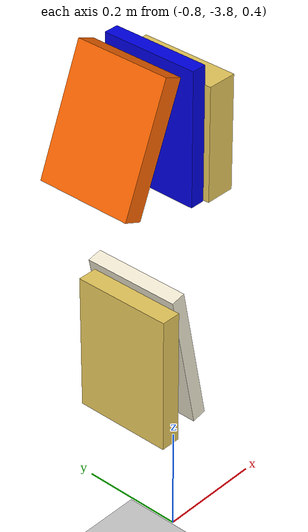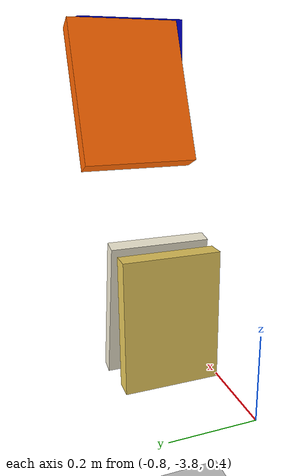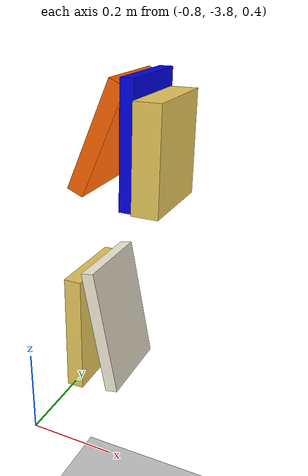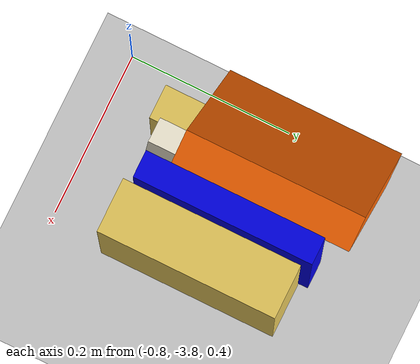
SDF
<sdf version="1.7">
 <world name="default">
  <model name="ground_plane">
   <static>1</static>
   <link name="link">
    <collision name="collision">
     <geometry><plane><normal>0 0 1</normal><size>100 100</size></plane></geometry>
     <surface>
      <contact><collide_bitmask>65535</collide_bitmask></contact>
      <friction><ode><mu>100</mu><mu2>50</mu2></ode></friction>
     </surface>
    </collision>
    <visual name="visual">
     <cast_shadows>0</cast_shadows>
     <geometry><plane><normal>0 0 1</normal><size>100 100</size></plane></geometry>
     <material>
      <script><uri>file://media/materials/scripts/gazebo.material</uri><name>Gazebo/Grey</name></script>
     </material>
    </visual>
   </link>
  </model>
  <model name="my_bookshelf">
   <link name="link_0_clone_0_clone_0">
    <inertial>
     <mass>1</mass>
     <inertia>
      <ixx>0.166667</ixx>
      <ixy>0</ixy>
      <ixz>0</ixz>
      <iyy>0.166667</iyy>
      <iyz>0</iyz>
      <izz>0.166667</izz>
     </inertia>
    </inertial>
    <pose>0.13743 -0.21618 0.64809 0 -0 0</pose>
    <gravity>0</gravity>
    <visual name="visual">
     <pose>0 0 0 -0.2 0 0</pose>
     <geometry><box><size>0.2 0.03 0.3</size></box></geometry>
     <material>
      <lighting>1</lighting>
      <script><uri>file://media/materials/scripts/gazebo.material</uri><name>Gazebo/Grey</name></script>
      <shader type="pixel"><normal_map>__default__</normal_map></shader>
      <ambient>0.96 0.93 0.84 1</ambient>
      <diffuse>0.96 0.93 0.84 1</diffuse>
      <specular>0.01 0.01 0.01 1</specular>
      <emissive>0 0 0 1</emissive>
     </material>
    </visual>
    <collision name="collision">
     <pose>0 0 0 -0.2 0 0</pose>
     <geometry><box><size>0.2 0.03 0.3</size></box></geometry>
     <surface>
      <friction>
       <ode><mu>1</mu><mu2>1</mu2><fdir1>0 0 0</fdir1><slip1>0</slip1><slip2>0</slip2></ode>
       <torsional>
        <coefficient>1</coefficient>
        <patch_radius>0</patch_radius>
        <surface_radius>0</surface_radius>
        <use_patch_radius>1</use_patch_radius>
        <ode><slip>0</slip></ode>
       </torsional>
      </friction>
      <bounce><restitution_coefficient>0</restitution_coefficient><threshold>1e+06</threshold></bounce>
      <contact>
       <collide_without_contact>0</collide_without_contact>
       <collide_without_contact_bitmask>1</collide_without_contact_bitmask>
       <collide_bitmask>1</collide_bitmask>
       <ode>
        <soft_cfm>0</soft_cfm>
        <soft_erp>0.2</soft_erp>
        <kp>1e+13</kp>
        <kd>1</kd>
        <max_vel>0.01</max_vel>
        <min_depth>0</min_depth>
       </ode>
       <bullet>
        <split_impulse>1</split_impulse>
        <split_impulse_penetration_threshold>-0.01</split_impulse_penetration_threshold>
        <soft_cfm>0</soft_cfm>
        <soft_erp>0.2</soft_erp>
        <kp>1e+13</kp>
        <kd>1</kd>
       </bullet>
      </contact>
     </surface>
    </collision>
   </link>
   <link name="link_0_clone_clone_0">
    <inertial>
     <mass>1</mass>
     <inertia>
      <ixx>0.166667</ixx>
      <ixy>0</ixy>
      <ixz>0</ixz>
      <iyy>0.166667</iyy>
      <iyz>0</iyz>
      <izz>0.166667</izz>
     </inertia>
    </inertial>
    <pose>0.125867 -0.155367 0.635683 0 -0 0</pose>
    <visual name="visual">
     <geometry><box><size>0.2 0.04 0.28</size></box></geometry>
     <material>
      <lighting>1</lighting>
      <script><uri>file://media/materials/scripts/gazebo.material</uri><name>Gazebo/Grey</name></script>
      <shader type="pixel"><normal_map>__default__</normal_map></shader>
      <ambient>0.91 0.79 0.36 1</ambient>
      <diffuse>0.91 0.79 0.36 1</diffuse>
      <specular>0.01 0.01 0.01 1</specular>
      <emissive>0 0 0 1</emissive>
     </material>
    </visual>
    <collision name="collision">
     <geometry><box><size>0.2 0.04 0.28</size></box></geometry>
     <surface>
      <friction>
       <ode><mu>1</mu><mu2>1</mu2><fdir1>0 0 0</fdir1><slip1>0</slip1><slip2>0</slip2></ode>
       <torsional>
        <coefficient>1</coefficient>
        <patch_radius>0</patch_radius>
        <surface_radius>0</surface_radius>
        <use_patch_radius>1</use_patch_radius>
        <ode><slip>0</slip></ode>
       </torsional>
      </friction>
      <bounce><restitution_coefficient>0</restitution_coefficient><threshold>1e+06</threshold></bounce>
      <contact>
       <collide_without_contact>0</collide_without_contact>
       <collide_without_contact_bitmask>1</collide_without_contact_bitmask>
       <collide_bitmask>1</collide_bitmask>
       <ode>
        <soft_cfm>0</soft_cfm>
        <soft_erp>0.2</soft_erp>
        <kp>1e+13</kp>
        <kd>1</kd>
        <max_vel>0.01</max_vel>
        <min_depth>0</min_depth>
       </ode>
       <bullet>
        <split_impulse>1</split_impulse>
        <split_impulse_penetration_threshold>-0.01</split_impulse_penetration_threshold>
        <soft_cfm>0</soft_cfm>
        <soft_erp>0.2</soft_erp>
        <kp>1e+13</kp>
        <kd>1</kd>
       </bullet>
      </contact>
     </surface>
    </collision>
   </link>
   <link name="link_0_clone_clone_1_clone_clone_clone_clone">
    <inertial>
     <mass>1</mass>
     <inertia>
      <ixx>0.166667</ixx>
      <ixy>0</ixy>
      <ixz>0</ixz>
      <iyy>0.166667</iyy>
      <iyz>0</iyz>
      <izz>0.166667</izz>
     </inertia>
    </inertial>
    <pose>0.191585 -0.180788 1.07689 0 -0 0</pose>
    <visual name="visual">
     <pose>0 0 0 0.4 -0 0</pose>
     <geometry><box><size>0.2 0.04 0.26</size></box></geometry>
     <material>
      <lighting>1</lighting>
      <script><uri>file://media/materials/scripts/gazebo.material</uri><name>Gazebo/Grey</name></script>
      <shader type="pixel"><normal_map>__default__</normal_map></shader>
      <ambient>1 0.4 0 1</ambient>
      <diffuse>0.8 0.8 0.8 1</diffuse>
      <specular>0.01 0.01 0.01 1</specular>
      <emissive>0 0 0 1</emissive>
     </material>
    </visual>
    <collision name="collision">
     <pose>0 0 0 0.4 -0 0</pose>
     <geometry><box><size>0.2 0.04 0.26</size></box></geometry>
     <surface>
      <friction>
       <ode><mu>1</mu><mu2>1</mu2><fdir1>0 0 0</fdir1><slip1>0</slip1><slip2>0</slip2></ode>
       <torsional>
        <coefficient>1</coefficient>
        <patch_radius>0</patch_radius>
        <surface_radius>0</surface_radius>
        <use_patch_radius>1</use_patch_radius>
        <ode><slip>0</slip></ode>
       </torsional>
      </friction>
      <bounce><restitution_coefficient>0</restitution_coefficient><threshold>1e+06</threshold></bounce>
      <contact>
       <collide_without_contact>0</collide_without_contact>
       <collide_without_contact_bitmask>1</collide_without_contact_bitmask>
       <collide_bitmask>1</collide_bitmask>
       <ode>
        <soft_cfm>0</soft_cfm>
        <soft_erp>0.2</soft_erp>
        <kp>1e+13</kp>
        <kd>1</kd>
        <max_vel>0.01</max_vel>
        <min_depth>0</min_depth>
       </ode>
       <bullet>
        <split_impulse>1</split_impulse>
        <split_impulse_penetration_threshold>-0.01</split_impulse_penetration_threshold>
        <soft_cfm>0</soft_cfm>
        <soft_erp>0.2</soft_erp>
        <kp>1e+13</kp>
        <kd>1</kd>
       </bullet>
      </contact>
     </surface>
    </collision>
   </link>
   <link name="link_0_clone_clone_3">
    <inertial>
     <mass>1</mass>
     <inertia>
      <ixx>0.166667</ixx>
      <ixy>0</ixy>
      <ixz>0</ixz>
      <iyy>0.166667</iyy>
      <iyz>0</iyz>
      <izz>0.166667</izz>
     </inertia>
    </inertial>
    <pose>0.153871 -0.311875 1.05588 0 -0 0</pose>
    <visual name="visual">
     <geometry><box><size>0.2 0.06 0.23</size></box></geometry>
     <material>
      <lighting>1</lighting>
      <script><uri>file://media/materials/scripts/gazebo.material</uri><name>Gazebo/Grey</name></script>
      <shader type="pixel"><normal_map>__default__</normal_map></shader>
      <ambient>0.91 0.79 0.36 1</ambient>
      <diffuse>0.91 0.79 0.36 1</diffuse>
      <specular>0.01 0.01 0.01 1</specular>
      <emissive>0 0 0 1</emissive>
     </material>
    </visual>
    <collision name="collision">
     <geometry><box><size>0.2 0.06 0.23</size></box></geometry>
     <surface>
      <friction>
       <ode><mu>1</mu><mu2>1</mu2><fdir1>0 0 0</fdir1><slip1>0</slip1><slip2>0</slip2></ode>
       <torsional>
        <coefficient>1</coefficient>
        <patch_radius>0</patch_radius>
        <surface_radius>0</surface_radius>
        <use_patch_radius>1</use_patch_radius>
        <ode><slip>0</slip></ode>
       </torsional>
      </friction>
      <bounce><restitution_coefficient>0</restitution_coefficient><threshold>1e+06</threshold></bounce>
      <contact>
       <collide_without_contact>0</collide_without_contact>
       <collide_without_contact_bitmask>1</collide_without_contact_bitmask>
       <collide_bitmask>1</collide_bitmask>
       <ode>
        <soft_cfm>0</soft_cfm>
        <soft_erp>0.2</soft_erp>
        <kp>1e+13</kp>
        <kd>1</kd>
        <max_vel>0.01</max_vel>
        <min_depth>0</min_depth>
       </ode>
       <bullet>
        <split_impulse>1</split_impulse>
        <split_impulse_penetration_threshold>-0.01</split_impulse_penetration_threshold>
        <soft_cfm>0</soft_cfm>
        <soft_erp>0.2</soft_erp>
        <kp>1e+13</kp>
        <kd>1</kd>
       </bullet>
      </contact>
     </surface>
    </collision>
   </link>
   <link name="link_0_clone_clone_3_clone">
    <inertial>
     <mass>1</mass>
     <inertia>
      <ixx>0.166667</ixx>
      <ixy>0</ixy>
      <ixz>0</ixz>
      <iyy>0.166667</iyy>
      <iyz>0</iyz>
      <izz>0.166667</izz>
     </inertia>
    </inertial>
    <pose>0.16451 -0.264855 1.0754 0 -0 0</pose>
    <visual name="visual">
     <geometry><box><size>0.2 0.03 0.27</size></box></geometry>
     <material>
      <lighting>1</lighting>
      <script><uri>file://media/materials/scripts/gazebo.material</uri><name>Gazebo/Grey</name></script>
      <shader type="pixel"><normal_map>__default__</normal_map></shader>
      <ambient>0 0 0.9 1</ambient>
      <diffuse>0.7 0.7 0.7 1</diffuse>
      <specular>0.01 0.01 0.01 1</specular>
      <emissive>0 0 0 1</emissive>
     </material>
    </visual>
    <collision name="collision">
     <geometry><box><size>0.2 0.03 0.27</size></box></geometry>
     <surface>
      <friction>
       <ode><mu>1</mu><mu2>1</mu2><fdir1>0 0 0</fdir1><slip1>0</slip1><slip2>0</slip2></ode>
       <torsional>
        <coefficient>1</coefficient>
        <patch_radius>0</patch_radius>
        <surface_radius>0</surface_radius>
        <use_patch_radius>1</use_patch_radius>
        <ode><slip>0</slip></ode>
       </torsional>
      </friction>
      <bounce><restitution_coefficient>0</restitution_coefficient><threshold>1e+06</threshold></bounce>
      <contact>
       <collide_without_contact>0</collide_without_contact>
       <collide_without_contact_bitmask>1</collide_without_contact_bitmask>
       <collide_bitmask>1</collide_bitmask>
       <ode>
        <soft_cfm>0</soft_cfm>
        <soft_erp>0.2</soft_erp>
        <kp>1e+13</kp>
        <kd>1</kd>
        <max_vel>0.01</max_vel>
        <min_depth>0</min_depth>
       </ode>
       <bullet>
        <split_impulse>1</split_impulse>
        <split_impulse_penetration_threshold>-0.01</split_impulse_penetration_threshold>
        <soft_cfm>0</soft_cfm>
        <soft_erp>0.2</soft_erp>
        <kp>1e+13</kp>
        <kd>1</kd>
       </bullet>
      </contact>
     </surface>
    </collision>
   </link>
   <static>1</static>
   <pose>-0.883105 -3.75431 -0 0 -0 1.5708</pose>
  </model>
 </world>
</sdf>
